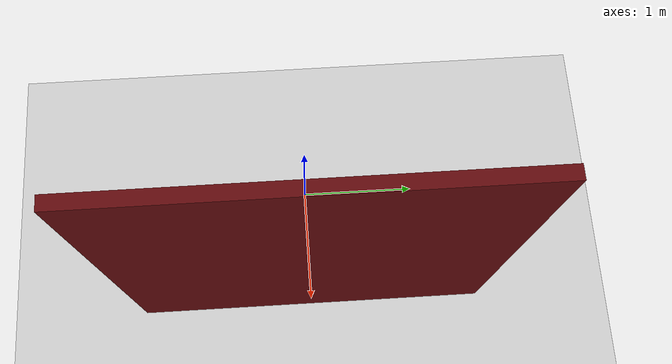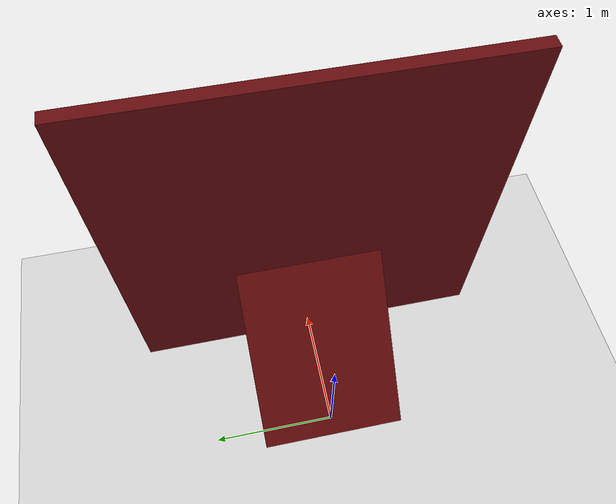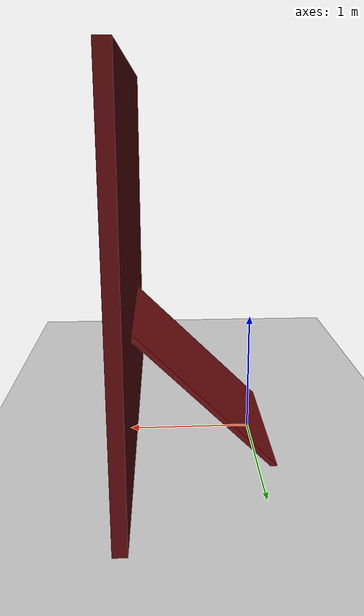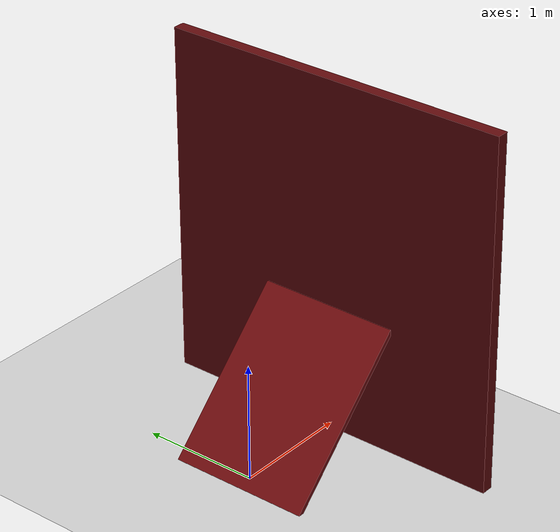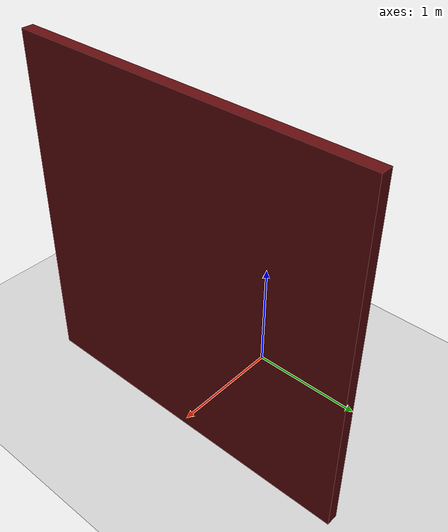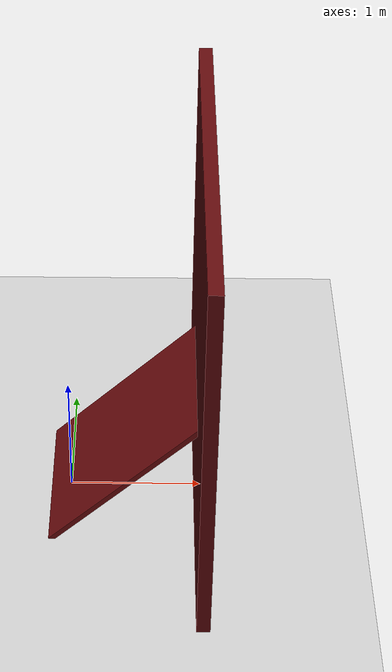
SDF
<?xml version="1.0" ?>
<sdf version="1.8">
    <world name="default">
        <gravity>0 0 -9.8</gravity>
        <physics name="1ms" type="ignored">
            <max_step_size>0.001</max_step_size>
            <real_time_factor>1.0</real_time_factor>
        </physics>
        <plugin filename="gz-sim-physics-system" name="gz::sim::systems::Physics"/>
        <plugin filename="gz-sim-user-commands-system" name="gz::sim::systems::UserCommands"/>
        <plugin filename="gz-sim-apply-link-wrench-system" name="gz::sim::systems::ApplyLinkWrench"/>
        <plugin filename="gz-sim-contact-system" name="gz::sim::systems::Contact"/>
        <plugin filename="gz-sim-scene-broadcaster-system" name="gz::sim::systems::SceneBroadcaster"/>

        <light type="directional" name="sun">
            <cast_shadows>true</cast_shadows>
            <pose>0 0 10 0 0 0</pose>
            <diffuse>0.8 0.8 0.8 1</diffuse>
            <specular>0.2 0.2 0.2 1</specular>
            <direction>-0.5 0.1 -0.9</direction>
        </light>

        <model name="ground_plane">
            <static>true</static>
            <link name="link">
                <collision name="collision">
                    <geometry><plane><normal>0 0 1</normal></plane></geometry>
                </collision>
                <visual name="visual">
                    <geometry><plane><normal>0 0 1</normal></plane></geometry>
                    <material>
                        <ambient>0.8 0.8 0.8 1</ambient>
                        <diffuse>0.8 0.8 0.8 1</diffuse>
                        <specular>0.8 0.8 0.8 1</specular>
                    </material>
                </visual>
            </link>
        </model>

        <model name="steel_slide_45deg">
            <static>true</static>
            <pose>0.430 0 0.552 0 -0.7854 0</pose>
            <link name="slide_link">
                <collision name="collision">
                    <geometry>
                        <box>
                            <size>1.60 1.20 0.04</size>
                        </box>
                    </geometry>
                    <surface>
                        <friction>
                            <ode>
                                <mu>1.0</mu>
                                <mu2>1.0</mu2>
                            </ode>
                        </friction>
                    </surface>
                </collision>
                <visual name="visual">
                    <geometry>
                        <box>
                            <size>1.60 1.20 0.04</size>
                        </box>
                    </geometry>
                    <material>
                        <ambient>0.24 0.02 0.03 1</ambient>
                        <diffuse>0.45 0.05 0.06 1</diffuse>
                        <specular>0.35 0.12 0.12 1</specular>
                    </material>
                </visual>
            </link>
        </model>

        <!-- Flat adhesion test panel.
             The robot starts on the -X side of this panel. The face used for
             climbing is at x=0.95 with outward normal -X. -->
        <model name="flat_steel_panel">
            <static>true</static>
            <pose>1.0 0 1.5 0 0 0</pose>
            <link name="panel_link">
                <collision name="collision">
                    <geometry>
                        <box>
                            <size>0.10 3.00 3.00</size>
                        </box>
                    </geometry>
                    <surface>
                        <friction>
                            <ode>
                                <mu>1.0</mu>
                                <mu2>1.0</mu2>
                            </ode>
                        </friction>
                    </surface>
                </collision>
                <visual name="visual">
                    <geometry>
                        <box>
                            <size>0.10 3.00 3.00</size>
                        </box>
                    </geometry>
                    <material>
                        <ambient>0.20 0.02 0.03 1</ambient>
                        <diffuse>0.38 0.04 0.05 1</diffuse>
                        <specular>0.32 0.10 0.10 1</specular>
                    </material>
                </visual>
            </link>
        </model>

    </world>
</sdf>
